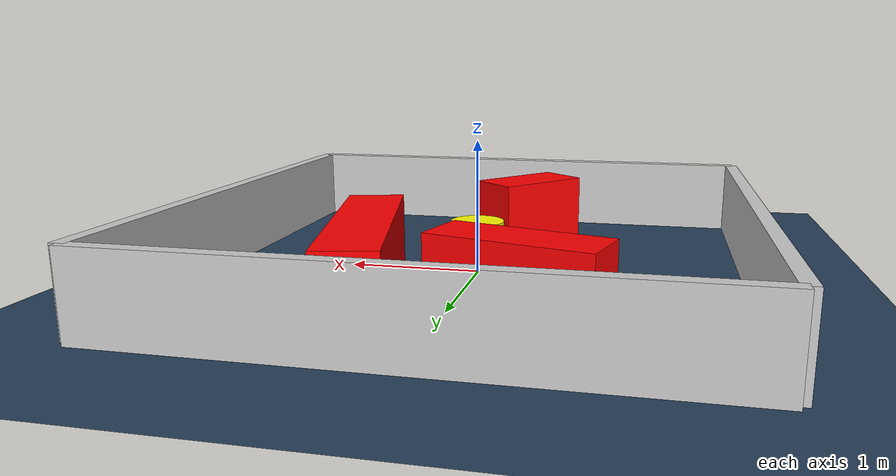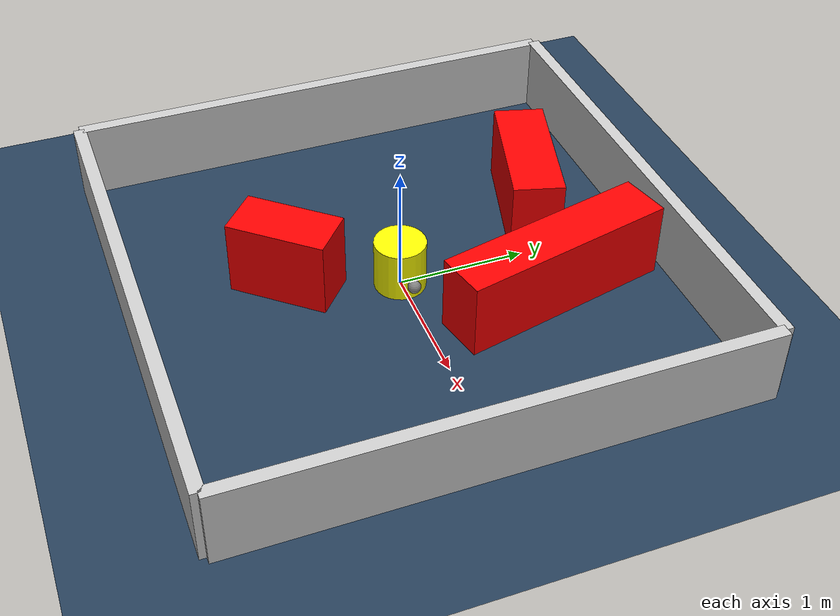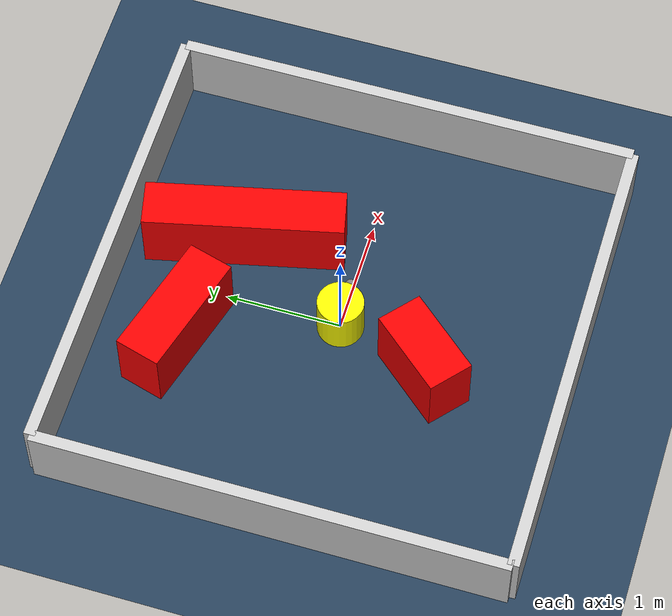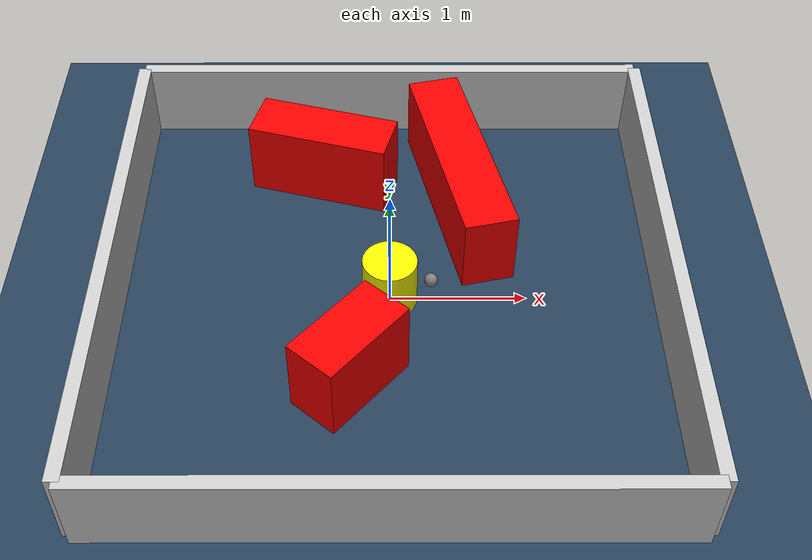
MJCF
<?xml version="1.0" ?>
<mujoco model="generated_environment">
  <option timestep="0.01" integrator="RK4" cone="elliptic"/>
  <default>
    <geom density="1"/>
  </default>
  <asset>
    <texture builtin="gradient" height="3072" rgb1="0.3 0.5 0.7" rgb2="0 0 0" type="skybox" width="512"/>
    <texture builtin="checker" height="300" mark="edge" markrgb="0.8 0.8 0.8" name="groundplane" rgb1="0.2 0.3 0.4" rgb2="0.1 0.2 0.3" type="2d" width="300"/>
    <material name="groundplane" reflectance="0.2" texrepeat="5 5" texture="groundplane" texuniform="true"/>
    <material name="robot" rgba="0.0 1.0 0.0 1"/>
  </asset>
  <worldbody>
    <light dir="0 0 -1" directional="true" pos="0 0 1.5"/>
    <geom condim="4" friction="1.0 0.005 0.001" material="groundplane" name="floor" size="0 0 0.05" type="plane"/>
    <body name="walls">
      <geom name="wall_1" condim="4" pos="-2.0 0.0 0.3" rgba="0.800000011920929 0.800000011920929 0.800000011920929 1.0" size="0.05 2.0 0.3" type="box"/>
      <geom name="wall_2" condim="4" pos="2.0 0.0 0.3" rgba="0.800000011920929 0.800000011920929 0.800000011920929 1.0" size="0.05 2.0 0.3" type="box"/>
      <geom name="wall_3" condim="4" pos="0.0 -2.0 0.3" rgba="0.800000011920929 0.800000011920929 0.800000011920929 1.0" size="2.0 0.05 0.3" type="box"/>
      <geom name="wall_4" condim="4" pos="0.0 2.0 0.3" rgba="0.800000011920929 0.800000011920929 0.800000011920929 1.0" size="2.0 0.05 0.3" type="box"/>
    </body>
    <body name="robot">
      <joint name="joint_x" type="slide" pos="0 0 0" axis="1 0 0"/>
      <joint name="joint_y" type="slide" pos="0 0 0" axis="0 1 0"/>
      <geom name="robot" type="sphere" pos="0.3 0.0 0.2" size="0.05" mass="5." friction="1.0 0.005 0.0001" condim="4" rgba="0.5 0.5 0.5 1.0"/>
      <site name="sensor_ball"/>
    </body>
    <body name="obstacle_movable_1">
      <geom name="obstacle_movable_1" condim="4" pos="0.0 0.0 0.2" euler="0 0 0.0" friction="1.0 0.005 0.001" rgba="1.0 1.0 0.0 1.0" size="0.2 0.2 0.0" type="cylinder" mass="0.1"/>
      <joint type="free"/>
    </body>
    <body name="obstacle_2_static">
      <geom name="obstacle_2_static" condim="4" pos="-0.27369244190555064 -0.800247414563019 0.3" euler="0 0 49.08033812801066" friction="1.0 0.005 0.001" rgba="1 0 0 1" size="0.3880737305419881 0.2 0.3" type="box"/>
    </body>
    <body name="obstacle_3_static">
      <geom name="obstacle_3_static" condim="4" pos="0.5423689901122224 1.0056380087522652 0.3" euler="0 0 102.96531694068614" friction="1.0 0.005 0.001" rgba="1 0 0 1" size="0.854252034124866 0.2 0.3" type="box"/>
    </body>
    <body name="obstacle_4_static">
      <geom name="obstacle_4_static" condim="4" pos="-0.5167805858129145 1.2724648535250827 0.3" euler="0 0 344.19663568890235" friction="1.0 0.005 0.001" rgba="1 0 0 1" size="0.5454083305091955 0.2 0.3" type="box"/>
    </body>
  </worldbody>
  <actuator>
    <motor name="actuator_x" joint="joint_x" gear="1" ctrlrange="-1 1"/>
    <motor name="actuator_y" joint="joint_y" gear="1" ctrlrange="-1 1"/>
  </actuator>
</mujoco>
